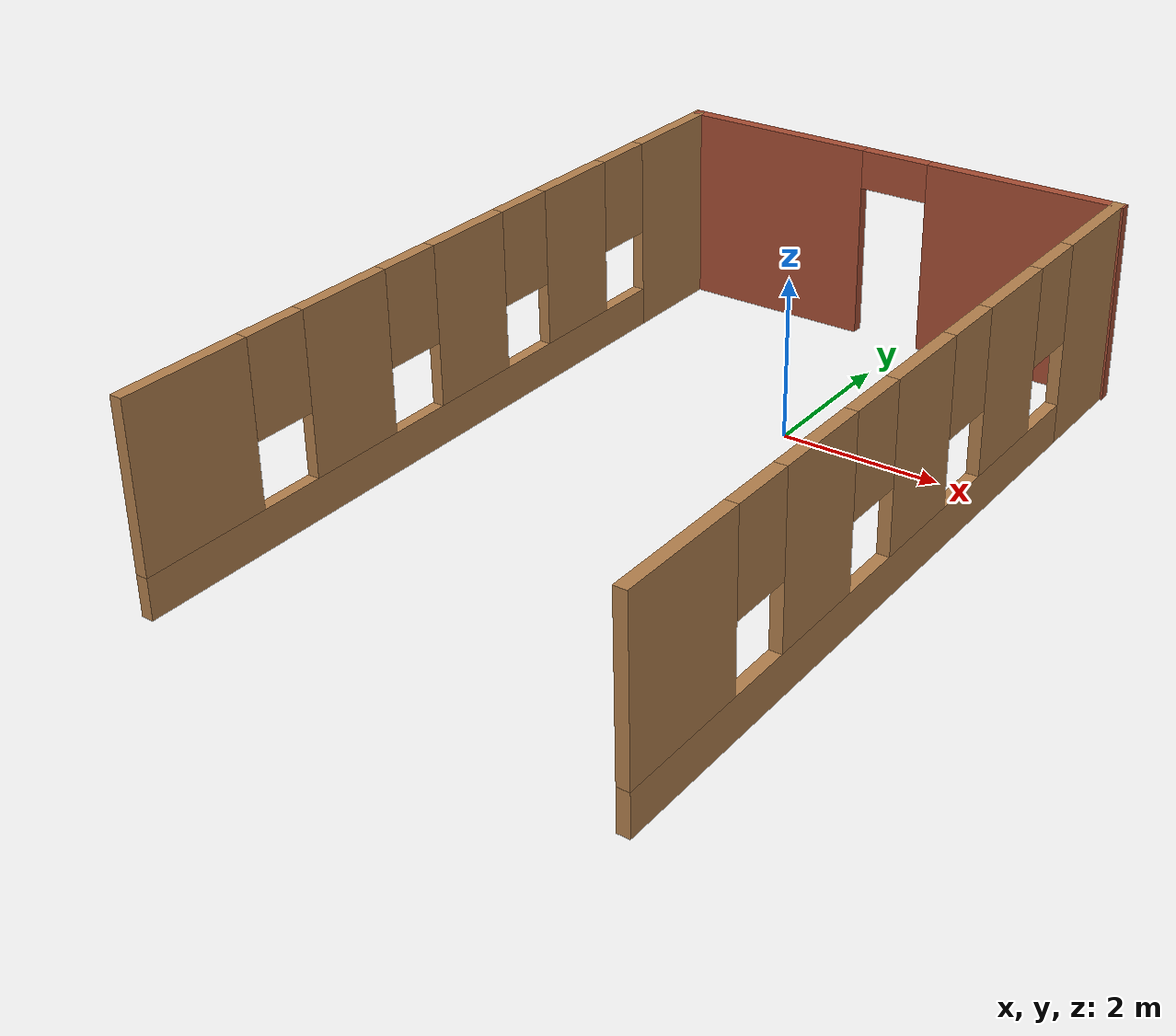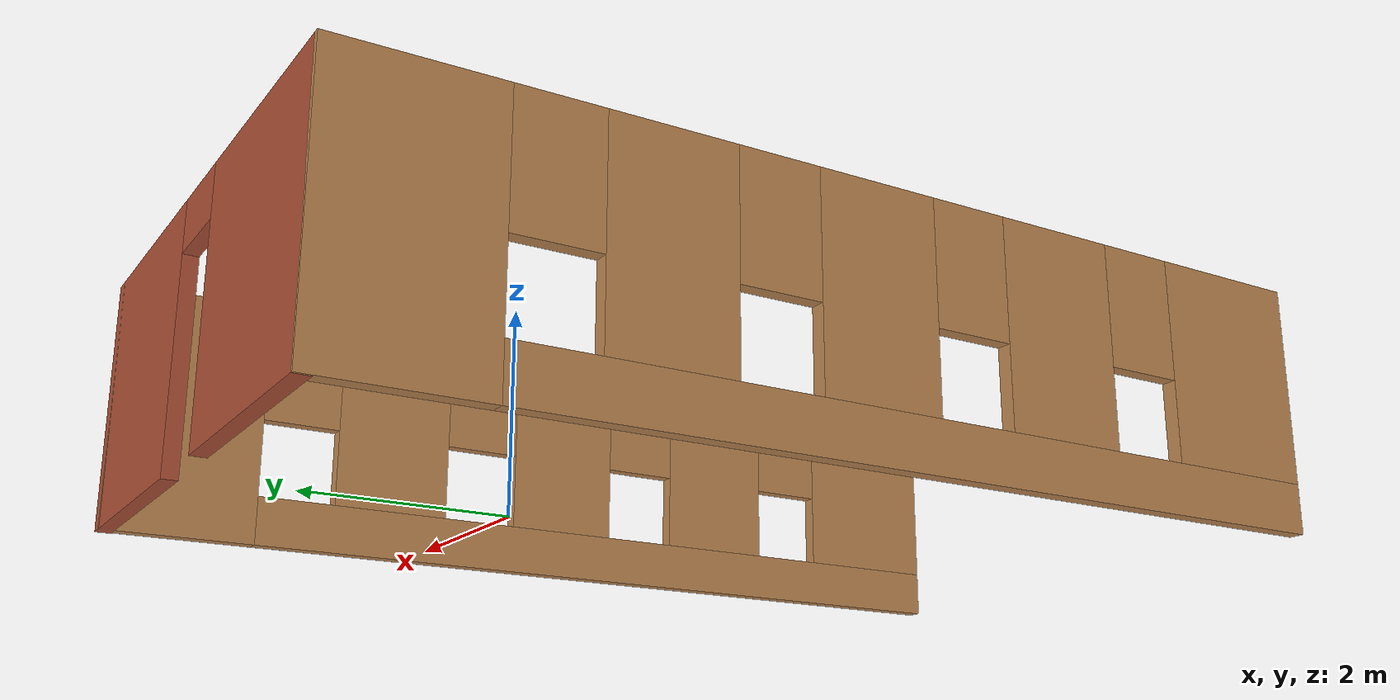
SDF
<?xml version='1.0'?>
<sdf version='1.6'>
  <model name='custom_cafe'>
    <pose frame=''>-0.303295 -1.89557 0 0 -0 0</pose>
    <link name='Wall_0'>
      <pose frame=''>0.0133 4.925 0 0 -0 0</pose>
      <visual name='Wall_0_Visual_0'>
        <pose frame=''>-1.72636 0 1.25 0 -0 0</pose>
        <geometry>
          <box>
            <size>2.54728 0.15 2.5</size>
          </box>
        </geometry>
        <material>
          <script>
            <uri>file://media/materials/scripts/gazebo.material</uri>
            <name>Gazebo/Bricks</name>
          </script>
          <ambient>1 1 1 1</ambient>
        </material>
        <meta>
          <layer>0</layer>
        </meta>
      </visual>
      <collision name='Wall_0_Collision_0'>
        <geometry>
          <box>
            <size>2.54728 0.15 2.5</size>
          </box>
        </geometry>
        <pose frame=''>-1.72636 0 1.25 0 -0 0</pose>
      </collision>
      <visual name='Wall_0_Visual_1'>
        <pose frame=''>1.72364 0 1.25 0 -0 0</pose>
        <geometry>
          <box>
            <size>2.55272 0.15 2.5</size>
          </box>
        </geometry>
        <material>
          <script>
            <uri>file://media/materials/scripts/gazebo.material</uri>
            <name>Gazebo/Bricks</name>
          </script>
          <ambient>1 1 1 1</ambient>
        </material>
        <meta>
          <layer>0</layer>
        </meta>
      </visual>
      <collision name='Wall_0_Collision_1'>
        <geometry>
          <box>
            <size>2.55272 0.15 2.5</size>
          </box>
        </geometry>
        <pose frame=''>1.72364 0 1.25 0 -0 0</pose>
      </collision>
      <visual name='Wall_0_Visual_2'>
        <pose frame=''>-0.002722 0 2.25 0 -0 0</pose>
        <geometry>
          <box>
            <size>0.9 0.15 0.5</size>
          </box>
        </geometry>
        <material>
          <script>
            <uri>file://media/materials/scripts/gazebo.material</uri>
            <name>Gazebo/Bricks</name>
          </script>
          <ambient>1 1 1 1</ambient>
        </material>
        <meta>
          <layer>0</layer>
        </meta>
      </visual>
      <collision name='Wall_0_Collision_2'>
        <geometry>
          <box>
            <size>0.9 0.15 0.5</size>
          </box>
        </geometry>
        <pose frame=''>-0.002722 0 2.25 0 -0 0</pose>
      </collision>
    </link>
    <link name='Wall_3'>
      <pose frame=''>2.9117 0 0 0 -0 -1.5708</pose>
      <visual name='Wall_3_Visual_0'>
        <pose frame=''>-4.25279 0 1.25 0 -0 0</pose>
        <geometry>
          <box>
            <size>1.49442 0.15 2.5</size>
          </box>
        </geometry>
        <material>
          <script>
            <uri>file://media/materials/scripts/gazebo.material</uri>
            <name>Gazebo/Wood</name>
          </script>
          <ambient>1 1 1 1</ambient>
        </material>
        <meta>
          <layer>0</layer>
        </meta>
      </visual>
      <collision name='Wall_3_Collision_0'>
        <geometry>
          <box>
            <size>1.49442 0.15 2.5</size>
          </box>
        </geometry>
        <pose frame=''>-4.25279 0 1.25 0 -0 0</pose>
      </collision>
      <visual name='Wall_3_Visual_1'>
        <pose frame=''>0.747208 0 0.25 0 -0 0</pose>
        <geometry>
          <box>
            <size>8.50558 0.15 0.5</size>
          </box>
        </geometry>
        <material>
          <script>
            <uri>file://media/materials/scripts/gazebo.material</uri>
            <name>Gazebo/Wood</name>
          </script>
          <ambient>1 1 1 1</ambient>
        </material>
        <meta>
          <layer>0</layer>
        </meta>
      </visual>
      <collision name='Wall_3_Collision_1'>
        <geometry>
          <box>
            <size>8.50558 0.15 0.5</size>
          </box>
        </geometry>
        <pose frame=''>0.747208 0 0.25 0 -0 0</pose>
      </collision>
      <visual name='Wall_3_Visual_2'>
        <pose frame=''>-2.09116 0 1.5 0 -0 0</pose>
        <geometry>
          <box>
            <size>1.22885 0.15 2</size>
          </box>
        </geometry>
        <material>
          <script>
            <uri>file://media/materials/scripts/gazebo.material</uri>
            <name>Gazebo/Wood</name>
          </script>
          <ambient>1 1 1 1</ambient>
        </material>
        <meta>
          <layer>0</layer>
        </meta>
      </visual>
      <collision name='Wall_3_Collision_2'>
        <geometry>
          <box>
            <size>1.22885 0.15 2</size>
          </box>
        </geometry>
        <pose frame=''>-2.09116 0 1.5 0 -0 0</pose>
      </collision>
      <visual name='Wall_3_Visual_3'>
        <pose frame=''>-0.079804 0 1.5 0 -0 0</pose>
        <geometry>
          <box>
            <size>1.19387 0.15 2</size>
          </box>
        </geometry>
        <material>
          <script>
            <uri>file://media/materials/scripts/gazebo.material</uri>
            <name>Gazebo/Wood</name>
          </script>
          <ambient>1 1 1 1</ambient>
        </material>
        <meta>
          <layer>0</layer>
        </meta>
      </visual>
      <collision name='Wall_3_Collision_3'>
        <geometry>
          <box>
            <size>1.19387 0.15 2</size>
          </box>
        </geometry>
        <pose frame=''>-0.079804 0 1.5 0 -0 0</pose>
      </collision>
      <visual name='Wall_3_Visual_4'>
        <pose frame=''>1.94451 0 1.5 0 -0 0</pose>
        <geometry>
          <box>
            <size>1.25475 0.15 2</size>
          </box>
        </geometry>
        <material>
          <script>
            <uri>file://media/materials/scripts/gazebo.material</uri>
            <name>Gazebo/Wood</name>
          </script>
          <ambient>1 1 1 1</ambient>
        </material>
        <meta>
          <layer>0</layer>
        </meta>
      </visual>
      <collision name='Wall_3_Collision_4'>
        <geometry>
          <box>
            <size>1.25475 0.15 2</size>
          </box>
        </geometry>
        <pose frame=''>1.94451 0 1.5 0 -0 0</pose>
      </collision>
      <visual name='Wall_3_Visual_5'>
        <pose frame=''>4.18594 0 1.5 0 -0 0</pose>
        <geometry>
          <box>
            <size>1.62812 0.15 2</size>
          </box>
        </geometry>
        <material>
          <script>
            <uri>file://media/materials/scripts/gazebo.material</uri>
            <name>Gazebo/Wood</name>
          </script>
          <ambient>1 1 1 1</ambient>
        </material>
        <meta>
          <layer>0</layer>
        </meta>
      </visual>
      <collision name='Wall_3_Collision_5'>
        <geometry>
          <box>
            <size>1.62812 0.15 2</size>
          </box>
        </geometry>
        <pose frame=''>4.18594 0 1.5 0 -0 0</pose>
      </collision>
      <visual name='Wall_3_Visual_6'>
        <pose frame=''>-3.10559 0 1.9 0 -0 0</pose>
        <geometry>
          <box>
            <size>0.8 0.15 1.2</size>
          </box>
        </geometry>
        <material>
          <script>
            <uri>file://media/materials/scripts/gazebo.material</uri>
            <name>Gazebo/Wood</name>
          </script>
          <ambient>1 1 1 1</ambient>
        </material>
        <meta>
          <layer>0</layer>
        </meta>
      </visual>
      <collision name='Wall_3_Collision_6'>
        <geometry>
          <box>
            <size>0.8 0.15 1.2</size>
          </box>
        </geometry>
        <pose frame=''>-3.10559 0 1.9 0 -0 0</pose>
      </collision>
      <visual name='Wall_3_Visual_7'>
        <pose frame=''>-1.07674 0 1.9 0 -0 0</pose>
        <geometry>
          <box>
            <size>0.8 0.15 1.2</size>
          </box>
        </geometry>
        <material>
          <script>
            <uri>file://media/materials/scripts/gazebo.material</uri>
            <name>Gazebo/Wood</name>
          </script>
          <ambient>1 1 1 1</ambient>
        </material>
        <meta>
          <layer>0</layer>
        </meta>
      </visual>
      <collision name='Wall_3_Collision_7'>
        <geometry>
          <box>
            <size>0.8 0.15 1.2</size>
          </box>
        </geometry>
        <pose frame=''>-1.07674 0 1.9 0 -0 0</pose>
      </collision>
      <visual name='Wall_3_Visual_8'>
        <pose frame=''>0.91713 0 1.9 0 -0 0</pose>
        <geometry>
          <box>
            <size>0.8 0.15 1.2</size>
          </box>
        </geometry>
        <material>
          <script>
            <uri>file://media/materials/scripts/gazebo.material</uri>
            <name>Gazebo/Wood</name>
          </script>
          <ambient>1 1 1 1</ambient>
        </material>
        <meta>
          <layer>0</layer>
        </meta>
      </visual>
      <collision name='Wall_3_Collision_8'>
        <geometry>
          <box>
            <size>0.8 0.15 1.2</size>
          </box>
        </geometry>
        <pose frame=''>0.91713 0 1.9 0 -0 0</pose>
      </collision>
      <visual name='Wall_3_Visual_9'>
        <pose frame=''>2.97188 0 1.9 0 -0 0</pose>
        <geometry>
          <box>
            <size>0.8 0.15 1.2</size>
          </box>
        </geometry>
        <material>
          <script>
            <uri>file://media/materials/scripts/gazebo.material</uri>
            <name>Gazebo/Wood</name>
          </script>
          <ambient>1 1 1 1</ambient>
        </material>
        <meta>
          <layer>0</layer>
        </meta>
      </visual>
      <collision name='Wall_3_Collision_9'>
        <geometry>
          <box>
            <size>0.8 0.15 1.2</size>
          </box>
        </geometry>
        <pose frame=''>2.97188 0 1.9 0 -0 0</pose>
      </collision>
    </link>
    <link name='Wall_5'>
      <pose frame=''>-2.9383 0 0 0 -0 -1.5708</pose>
      <visual name='Wall_5_Visual_0'>
        <pose frame=''>-4.25024 0 1.25 0 -0 0</pose>
        <geometry>
          <box>
            <size>1.49952 0.15 2.5</size>
          </box>
        </geometry>
        <material>
          <script>
            <uri>file://media/materials/scripts/gazebo.material</uri>
            <name>Gazebo/Wood</name>
          </script>
          <ambient>1 1 1 1</ambient>
        </material>
        <meta>
          <layer>0</layer>
        </meta>
      </visual>
      <collision name='Wall_5_Collision_0'>
        <geometry>
          <box>
            <size>1.49952 0.15 2.5</size>
          </box>
        </geometry>
        <pose frame=''>-4.25024 0 1.25 0 -0 0</pose>
      </collision>
      <visual name='Wall_5_Visual_1'>
        <pose frame=''>0.749761 0 0.25 0 -0 0</pose>
        <geometry>
          <box>
            <size>8.50048 0.15 0.5</size>
          </box>
        </geometry>
        <material>
          <script>
            <uri>file://media/materials/scripts/gazebo.material</uri>
            <name>Gazebo/Wood</name>
          </script>
          <ambient>1 1 1 1</ambient>
        </material>
        <meta>
          <layer>0</layer>
        </meta>
      </visual>
      <collision name='Wall_5_Collision_1'>
        <geometry>
          <box>
            <size>8.50048 0.15 0.5</size>
          </box>
        </geometry>
        <pose frame=''>0.749761 0 0.25 0 -0 0</pose>
      </collision>
      <visual name='Wall_5_Visual_2'>
        <pose frame=''>-2.10199 0 1.5 0 -0 0</pose>
        <geometry>
          <box>
            <size>1.19697 0.15 2</size>
          </box>
        </geometry>
        <material>
          <script>
            <uri>file://media/materials/scripts/gazebo.material</uri>
            <name>Gazebo/Wood</name>
          </script>
          <ambient>1 1 1 1</ambient>
        </material>
        <meta>
          <layer>0</layer>
        </meta>
      </visual>
      <collision name='Wall_5_Collision_2'>
        <geometry>
          <box>
            <size>1.19697 0.15 2</size>
          </box>
        </geometry>
        <pose frame=''>-2.10199 0 1.5 0 -0 0</pose>
      </collision>
      <visual name='Wall_5_Visual_3'>
        <pose frame=''>-0.097152 0 1.5 0 -0 0</pose>
        <geometry>
          <box>
            <size>1.2127 0.15 2</size>
          </box>
        </geometry>
        <material>
          <script>
            <uri>file://media/materials/scripts/gazebo.material</uri>
            <name>Gazebo/Wood</name>
          </script>
          <ambient>1 1 1 1</ambient>
        </material>
        <meta>
          <layer>0</layer>
        </meta>
      </visual>
      <collision name='Wall_5_Collision_3'>
        <geometry>
          <box>
            <size>1.2127 0.15 2</size>
          </box>
        </geometry>
        <pose frame=''>-0.097152 0 1.5 0 -0 0</pose>
      </collision>
      <visual name='Wall_5_Visual_4'>
        <pose frame=''>1.94054 0 1.5 0 -0 0</pose>
        <geometry>
          <box>
            <size>1.26269 0.15 2</size>
          </box>
        </geometry>
        <material>
          <script>
            <uri>file://media/materials/scripts/gazebo.material</uri>
            <name>Gazebo/Wood</name>
          </script>
          <ambient>1 1 1 1</ambient>
        </material>
        <meta>
          <layer>0</layer>
        </meta>
      </visual>
      <collision name='Wall_5_Collision_4'>
        <geometry>
          <box>
            <size>1.26269 0.15 2</size>
          </box>
        </geometry>
        <pose frame=''>1.94054 0 1.5 0 -0 0</pose>
      </collision>
      <visual name='Wall_5_Visual_5'>
        <pose frame=''>4.18594 0 1.5 0 -0 0</pose>
        <geometry>
          <box>
            <size>1.62812 0.15 2</size>
          </box>
        </geometry>
        <material>
          <script>
            <uri>file://media/materials/scripts/gazebo.material</uri>
            <name>Gazebo/Wood</name>
          </script>
          <ambient>1 1 1 1</ambient>
        </material>
        <meta>
          <layer>0</layer>
        </meta>
      </visual>
      <collision name='Wall_5_Collision_5'>
        <geometry>
          <box>
            <size>1.62812 0.15 2</size>
          </box>
        </geometry>
        <pose frame=''>4.18594 0 1.5 0 -0 0</pose>
      </collision>
      <visual name='Wall_5_Visual_6'>
        <pose frame=''>-3.10048 0 1.9 0 -0 0</pose>
        <geometry>
          <box>
            <size>0.8 0.15 1.2</size>
          </box>
        </geometry>
        <material>
          <script>
            <uri>file://media/materials/scripts/gazebo.material</uri>
            <name>Gazebo/Wood</name>
          </script>
          <ambient>1 1 1 1</ambient>
        </material>
        <meta>
          <layer>0</layer>
        </meta>
      </visual>
      <collision name='Wall_5_Collision_6'>
        <geometry>
          <box>
            <size>0.8 0.15 1.2</size>
          </box>
        </geometry>
        <pose frame=''>-3.10048 0 1.9 0 -0 0</pose>
      </collision>
      <visual name='Wall_5_Visual_7'>
        <pose frame=''>-1.1035 0 1.9 0 -0 0</pose>
        <geometry>
          <box>
            <size>0.8 0.15 1.2</size>
          </box>
        </geometry>
        <material>
          <script>
            <uri>file://media/materials/scripts/gazebo.material</uri>
            <name>Gazebo/Wood</name>
          </script>
          <ambient>1 1 1 1</ambient>
        </material>
        <meta>
          <layer>0</layer>
        </meta>
      </visual>
      <collision name='Wall_5_Collision_7'>
        <geometry>
          <box>
            <size>0.8 0.15 1.2</size>
          </box>
        </geometry>
        <pose frame=''>-1.1035 0 1.9 0 -0 0</pose>
      </collision>
      <visual name='Wall_5_Visual_8'>
        <pose frame=''>0.909198 0 1.9 0 -0 0</pose>
        <geometry>
          <box>
            <size>0.8 0.15 1.2</size>
          </box>
        </geometry>
        <material>
          <script>
            <uri>file://media/materials/scripts/gazebo.material</uri>
            <name>Gazebo/Wood</name>
          </script>
          <ambient>1 1 1 1</ambient>
        </material>
        <meta>
          <layer>0</layer>
        </meta>
      </visual>
      <collision name='Wall_5_Collision_8'>
        <geometry>
          <box>
            <size>0.8 0.15 1.2</size>
          </box>
        </geometry>
        <pose frame=''>0.909198 0 1.9 0 -0 0</pose>
      </collision>
      <visual name='Wall_5_Visual_9'>
        <pose frame=''>2.97188 0 1.9 0 -0 0</pose>
        <geometry>
          <box>
            <size>0.8 0.15 1.2</size>
          </box>
        </geometry>
        <material>
          <script>
            <uri>file://media/materials/scripts/gazebo.material</uri>
            <name>Gazebo/Wood</name>
          </script>
          <ambient>1 1 1 1</ambient>
        </material>
        <meta>
          <layer>0</layer>
        </meta>
      </visual>
      <collision name='Wall_5_Collision_9'>
        <geometry>
          <box>
            <size>0.8 0.15 1.2</size>
          </box>
        </geometry>
        <pose frame=''>2.97188 0 1.9 0 -0 0</pose>
      </collision>
    </link>
    <static>1</static>
  </model>
</sdf>
